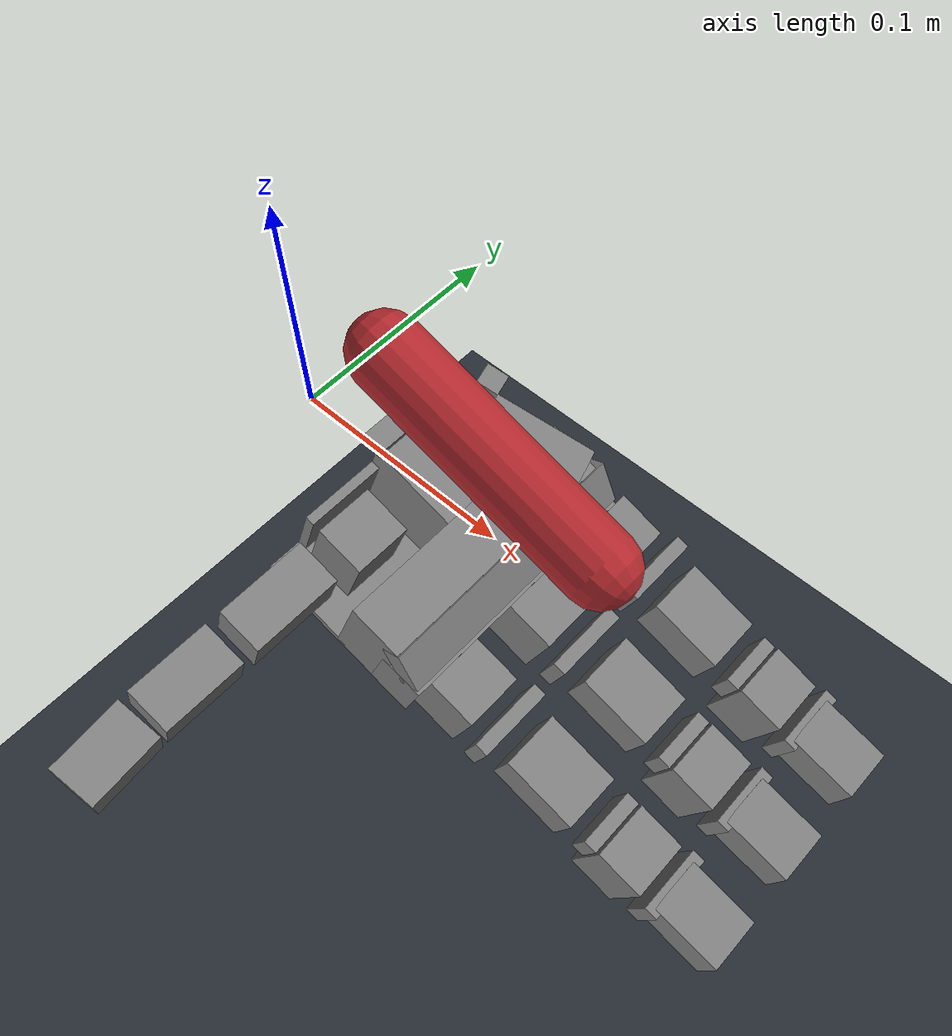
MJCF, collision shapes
<mujoco model="leap_ec_large_marker">
  <include file="leap_rh_mjx.xml"/>
  <asset><material name="ec_object_material" rgba="0.70 0.16 0.18 1"/></asset>
  <worldbody>
    <body name="cube" pos="0.1 0 0.05" quat="0.810967 -0.00262895 -0.585086 -0.000254303">
      <freejoint name="cube_freejoint"/>
      <geom name="large_marker_geom" type="capsule" fromto="0 0 -0.052 0 0 0.052" size="0.015"
        mass="0.115" friction="0.9 0.05 0.0002" material="ec_object_material"/>
    </body>
  </worldbody>
  <include file="leap_policy_reference_environment.xml"/>
  <keyframe>
    <key name="reference_grasp"
      qpos="
      0.107166316534 0.114441043793 0.955686900859 0.780980908733
      0.0936089620079 -0.177035017408 0.274451788441 0.980440660661
      1.20702052739 0.108302461426 1.35235027676 0.943014533488
      0.581880654615 0.452434361019 1.26135454793 -0.290390360195
      0.10117588733 0.000847614872757 0.000825212688257
      0.838608284287 0.00272628835086 -0.544639121394 -0.00984582774433"
      ctrl="
      -0.314 0.712430912768 1.05769039569 0.76714204317
      -0.314 -0.244774429593 -0.506 1.51616811678
      1.38922822215 -0.0116619367618 1.76141458675 1.07222869531
      0.542633232847 0.401469043642 1.30771925366 -0.402461828664"/>
  </keyframe>
</mujoco>

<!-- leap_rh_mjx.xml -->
<mujoco model="leap_rh">
  <!-- AutoAdapter modification: local mesh paths and deployed 0.002 s timestep. -->
  <compiler angle="radian" autolimits="true"/>

  <option timestep="0.002" integrator="Euler" iterations="5" ls_iterations="8">
    <flag eulerdamp="disable"/>
  </option>

  <custom>
    <numeric data="30" name="max_contact_points"/>
    <numeric data="12" name="max_geom_pairs"/>
  </custom>

  <asset>
    <material name="black" rgba="0.2 0.2 0.2 1"/>
    <material name="gray" rgba="0.5 0.5 0.5 1"/>
    <mesh name="leap_mount" file="assets/leap_mount.obj"/>

    <mesh name="palm" file="assets/palm_right.obj"/>
    <mesh name="base" file="assets/base.obj"/>
    <mesh name="proximal" file="assets/proximal.obj"/>
    <mesh name="medial" file="assets/medial.obj"/>
    <mesh name="distal" file="assets/distal.obj"/>
    <mesh name="tip" file="assets/tip.obj"/>
    <mesh name="thumb_base" file="assets/thumb_base.obj"/>
    <mesh name="thumb_proximal" file="assets/thumb_proximal.obj"/>
    <mesh name="thumb_distal" file="assets/thumb_distal.obj"/>
    <mesh name="thumb_tip" file="assets/thumb_tip.obj"/>
  </asset>

  <default>
    <default class="leap_rh">
      <geom group="3" friction="0.2" solref="0.02 1.5" solimp="0.9 0.99 0.001"/>
      <default class="visual">
        <geom group="2" type="mesh" contype="0" conaffinity="0" density="0" material="black"/>
      </default>
      <default class="tip">
        <geom size="0.01 0.012 0.016" pos="-0.0012969 -0.0335524 0.0145207" quat="0.703552 0.709596 -0.0292107 -0.0252203" type="box" friction="0.7 0.05 0.0002" rgba=".5 .5 .5 .3"/>
      </default>
      <default class="thumb_tip">
        <geom size="0.01 0.012 0.016" pos="-0.00127744 -0.0455619 -0.0144774" quat="0.708101 0.705072 -0.0294902 -0.024426" type="box" friction="0.7 0.05 0.0002" rgba=".5 .5 .5 .3"/>
      </default>

      <position kp="3.0" inheritrange="1"/>
      <!-- armature = rotor inertia * gear ratio^2 = 1.7 * 1e-8 * 288*288 = 0.00149376 -->
      <!-- max torque = 0.2196 = 600/1000*0.366 -->
      <!-- frictionloss = rough guess, small ish value -->
      <joint axis="0 0 -1" damping="0.2" armature="0.00149376" actuatorfrcrange="-0.2196 0.2196" frictionloss="0.02"/>

      <default class="mcp">
        <joint range="-0.314 2.23"/>
      </default>
      <default class="rot">
        <joint range="-1.047 1.047"/>
      </default>
      <default class="pip">
        <joint range="-0.506 1.885"/>
      </default>
      <default class="dip">
        <joint range="-0.366 2.042"/>
      </default>
      <default class="thumb_cmc">
        <joint range="-0.349 2.094"/>
      </default>
      <default class="thumb_axl">
        <joint range="-0.349 2.094"/>
      </default>
      <default class="thumb_mcp">
        <joint range="-0.47 2.443"/>
      </default>
      <default class="thumb_ipl">
        <joint range="-1.34 1.88"/>
      </default>

    </default>
  </default>

  <contact>
    <!-- filter the palm from all other finger bodies except the tips -->
    <exclude body1="palm" body2="if_bs"/>
    <exclude body1="palm" body2="mf_bs"/>
    <exclude body1="palm" body2="rf_bs"/>
    <exclude body1="palm" body2="th_mp"/>

    <exclude body1="palm" body2="if_px"/>
    <exclude body1="palm" body2="mf_px"/>
    <exclude body1="palm" body2="rf_px"/>
    <exclude body1="palm" body2="th_bs"/>

    <exclude body1="palm" body2="if_md"/>
    <exclude body1="palm" body2="mf_md"/>
    <exclude body1="palm" body2="rf_md"/>
    <exclude body1="palm" body2="th_px"/>

    <!-- filter the mount from all finger bodies except the tips -->
    <exclude body1="leap_mount" body2="if_bs"/>
    <exclude body1="leap_mount" body2="mf_bs"/>
    <exclude body1="leap_mount" body2="rf_bs"/>
    <exclude body1="leap_mount" body2="th_mp"/>

    <exclude body1="leap_mount" body2="if_px"/>
    <exclude body1="leap_mount" body2="mf_px"/>
    <exclude body1="leap_mount" body2="rf_px"/>
    <exclude body1="leap_mount" body2="th_bs"/>

    <exclude body1="leap_mount" body2="if_md"/>
    <exclude body1="leap_mount" body2="mf_md"/>
    <exclude body1="leap_mount" body2="rf_md"/>
    <exclude body1="leap_mount" body2="th_px"/>

    <!-- none of the base fingertip geoms can touch each other -->
    <exclude body1="if_bs" body2="mf_bs"/>
    <exclude body1="if_bs" body2="rf_bs"/>
    <exclude body1="mf_bs" body2="rf_bs"/>

    <exclude body1="th_mp" body2="if_bs"/>
    <exclude body1="th_mp" body2="mf_bs"/>
    <exclude body1="th_mp" body2="rf_bs"/>
  </contact>

  <worldbody>
    <light name="spotlight" mode="targetbodycom" target="palm" pos="3 0 4"/>
    <body name="leap_mount" pos="0 0 0" quat="1 0 0 0" childclass="leap_rh">
      <geom name="leap_mount_visual" pos="0 0 0" quat="1 0 0 0" class="visual" mesh="leap_mount"/>
      <geom name="leap_mount_collision_0" size="0.002 0.025 0.005" pos="0.0405 0.02 0.009"
        quat="0.57346234 0 0.81923192 0" type="box"/>
      <geom name="leap_mount_collision_1" size="0.005 0.005 0.005" pos="0.05 0.053 0.002"
        quat="0.4987168 0.64994038 -0.34910175 0.45495826" type="box"/>
      <site name="grasp_site" pos="0.11 0.0 0.03" group="4"/>
      <body name="palm" pos="0.124 -0.0305 -0.06045" quat="0 1 0 -0.175">
        <inertial pos="-0.049542 -0.042914 -0.010227" quat="0.565586 0.427629 -0.574956 0.408254" mass="0.237"
          diaginertia="0.000407345 0.000304759 0.000180736"/>
        <geom name="palm_visual" pos="-0.02 0.02575 -0.0347" quat="1 0 0 0" class="visual" mesh="palm"/>
        <geom name="palm_collision_1" size="0.011 0.013 0.017" pos="-0.009 0.008 -0.011" type="box"/>
        <geom name="palm_collision_2" size="0.011 0.013 0.017" pos="-0.009 -0.037 -0.011" type="box"/>
        <geom name="palm_collision_3" size="0.011 0.013 0.017" pos="-0.009 -0.082 -0.011" type="box"/>
        <geom name="palm_collision_4" size="0.029 0.01 0.023" pos="-0.066 -0.078 -0.0115" quat="0.989016 0 0 -0.147806" type="box"/>
        <geom name="palm_collision_5" size="0.01 0.06 0.015" pos="-0.03 -0.035 -0.003" type="box"/>
        <geom name="palm_collision_6" size="0.005 0.06 0.01" pos="-0.032 -0.035 -0.024" quat="0.923956 0 0.382499 0" type="box"/>
        <geom name="palm_collision_7" size="0.012 0.058 0.023" pos="-0.048 -0.033 -0.0115" type="box"/>
        <geom name="palm_collision_8" size="0.022 0.026 0.023" pos="-0.078 -0.053 -0.0115" type="box"/>
        <geom name="palm_collision_9" size="0.002 0.018 0.017" pos="-0.098 -0.009 -0.006" type="box"/>
        <geom name="palm_collision_10" size="0.022 0.028 0.002" pos="-0.078 -0.003 0.01" type="box"/>
        <body name="if_bs" pos="-0.007 0.023 -0.0187" quat="0.5 0.5 0.5 -0.5">
          <inertial pos="-0.022516 0.033882 0.016359" quat="0.388092 0.677951 -0.247713 0.573067" mass="0.044"
            diaginertia="1.74972e-05 1.61504e-05 7.21342e-06"/>
          <joint name="if_mcp" class="mcp"/>
          <geom name="if_bs_visual" pos="0.0084 0.0077 0.01465" quat="1 0 0 0" class="visual" mesh="base"/>
          <geom name="if_bs_collision_1" size="0.01 0.003 0.017" pos="0 0.018 0.0147" type="box"/>
          <body name="if_px" pos="-0.0122 0.0381 0.0145" quat="0.500003 -0.5 -0.499997 0.5">
            <inertial pos="0.0075 -0.0002 -0.011" quat="0 0.707107 0 0.707107" mass="0.032"
              diaginertia="4.8853e-06 4.3733e-06 3.0933e-06"/>
            <joint name="if_rot" class="rot"/>
            <geom name="if_px_visual" pos="0.0096 0.0002 0.0007" quat="0.500003 -0.5 -0.5 -0.499997" class="visual"
              mesh="proximal"/>
            <geom name="if_px_collision" size="0.017 0.013 0.011" pos="0.0075 -0.0002 -0.011" type="box"/>

            <body name="if_md" pos="0.015 0.0143 -0.013" quat="0.500003 0.5 -0.5 0.499997">
              <inertial pos="0.0054215 -0.029148 0.015" quat="0.687228 0.687228 0.166487 0.166487" mass="0.037"
                diaginertia="8.28004e-06 8.1598e-06 5.39516e-06"/>
              <joint name="if_pip" class="pip"/>
              <geom name="if_md_visual" pos="0.0211 -0.0084 0.0097" quat="2.67949e-08 -1 0 0" class="visual"
                mesh="medial"/>
              <geom name="if_md_collision_1" size="0.008 0.003 0.013" pos="0 -0.02 0.015" type="box"/>
              <geom name="if_md_collision_5" size="0.017 0.011 0.013" pos="0.0075 -0.035 0.015" type="box"/>
              <body name="if_ds" pos="0 -0.0361 0.0002">
                <inertial pos="-0.0008794 -0.027019 0.014594" quat="0.702905 0.710643 -0.0212937 -0.0214203"
                  mass="0.016" diaginertia="3.71863e-06 3.02396e-06 1.6518e-06"/>
                <joint name="if_dip" class="dip"/>
                <geom name="if_ds_visual" pos="0.0132 -0.0061 0.0144" quat="2.67949e-08 1 0 0" class="visual"
                  mesh="distal"/>
                <geom name="if_ds_collision_1" size="0.01 0.003 0.015" pos="0 -0.017 0.015" type="box"/>
                <geom name="if_tip" class="tip"/>
                <geom type="mesh" mesh="tip" class="visual" material="gray"/>
                <site name="if_tip" pos="0 -0.05 0.015" group="4"/>
              </body>
            </body>
          </body>
        </body>
        <body name="mf_bs" pos="-0.0071 -0.0224 -0.0187" quat="0.500003 0.5 0.5 -0.499997">
          <inertial pos="-0.022516 0.033882 0.016359" quat="0.388092 0.677951 -0.247713 0.573067" mass="0.044"
            diaginertia="1.74972e-05 1.61504e-05 7.21342e-06"/>
          <joint name="mf_mcp" class="mcp"/>
          <geom name="mf_bs_visual" pos="0.0084 0.0077 0.01465" quat="1 0 0 0" class="visual" mesh="base"/>
          <geom name="mf_bs_collision_1" size="0.01 0.003 0.017" pos="0 0.018 0.0147" type="box"/>
          <body name="mf_px" pos="-0.0122 0.0381 0.0145" quat="0.500003 -0.5 -0.499997 0.5">
            <inertial pos="0.0075 -0.0002 -0.011" quat="0 0.707107 0 0.707107" mass="0.032"
              diaginertia="4.8853e-06 4.3733e-06 3.0933e-06"/>
            <joint name="mf_rot" class="rot"/>
            <geom name="mf_px_visual" pos="0.0096 0.0003 0.0007" quat="0.500003 -0.5 -0.5 -0.499997" class="visual"
              mesh="proximal"/>
            <geom name="mf_px_collision" size="0.017 0.013 0.011" pos="0.0075 -0.0002 -0.011" type="box"/>
            <body name="mf_md" pos="0.015 0.0143 -0.013" quat="0.500003 0.5 -0.5 0.499997">
              <inertial pos="0.0054215 -0.029148 0.015" quat="0.687228 0.687228 0.166487 0.166487" mass="0.037"
                diaginertia="8.28004e-06 8.1598e-06 5.39516e-06"/>
              <joint name="mf_pip" class="pip"/>
              <geom name="mf_md_visual" pos="0.0211 -0.0084 0.0097" quat="1.32679e-06 -1 0 0" class="visual"
                mesh="medial"/>
              <geom name="mf_md_collision_1" size="0.008 0.003 0.013" pos="0 -0.02 0.015" type="box"/>
              <geom name="mf_md_collision_5" size="0.017 0.011 0.013" pos="0.0075 -0.035 0.015" type="box"/>
              <body name="mf_ds" pos="0 -0.0361 0.0002">
                <inertial pos="-0.0008794 -0.027019 0.014594" quat="0.702905 0.710643 -0.0212937 -0.0214203"
                  mass="0.016" diaginertia="3.71863e-06 3.02396e-06 1.6518e-06"/>
                <joint name="mf_dip" class="dip"/>
                <geom name="mf_ds_visual" pos="0.0132 -0.0061 0.0145" quat="1.32679e-06 1 0 0" class="visual"
                  mesh="distal"/>
                <geom name="mf_ds_collision_1" size="0.01 0.003 0.015" pos="0 -0.017 0.015" type="box"/>
                <geom name="mf_tip" class="tip"/>
                <geom type="mesh" mesh="tip" class="visual" material="gray"/>
                <site name="mf_tip" pos="0 -0.05 0.015" group="4"/>
              </body>
            </body>
          </body>
        </body>
        <body name="rf_bs" pos="-0.00709 -0.0678 -0.0187" quat="0.500003 0.5 0.5 -0.499997">
          <inertial pos="-0.022516 0.033882 0.016359" quat="0.388092 0.677951 -0.247713 0.573067" mass="0.044"
            diaginertia="1.74972e-05 1.61504e-05 7.21342e-06"/>
          <joint name="rf_mcp" class="mcp"/>
          <geom name="rf_bs_visual" pos="0.0084 0.0077 0.01465" quat="1 0 0 0" class="visual" mesh="base"/>
          <geom name="rf_bs_collision_1" size="0.01 0.003 0.017" pos="0 0.018 0.0147" type="box"/>
          <body name="rf_px" pos="-0.0122 0.0381 0.0145" quat="0.500003 -0.5 -0.499997 0.5">
            <inertial pos="0.0075 -0.0002 -0.011" quat="0 0.707107 0 0.707107" mass="0.032"
              diaginertia="4.8853e-06 4.3733e-06 3.0933e-06"/>
            <joint name="rf_rot" class="rot"/>
            <geom name="rf_px_visual" pos="0.0096 0.0003 0.0007" quat="0.500003 -0.5 -0.5 -0.499997" class="visual"
              mesh="proximal"/>
            <geom name="rf_px_collision" size="0.017 0.013 0.011" pos="0.0075 -0.0002 -0.011" type="box"/>
            <body name="rf_md" pos="0.015 0.0143 -0.013" quat="0.500003 0.5 -0.5 0.499997">
              <inertial pos="0.0054215 -0.029148 0.015" quat="0.687228 0.687228 0.166487 0.166487" mass="0.037"
                diaginertia="8.28004e-06 8.1598e-06 5.39516e-06"/>
              <joint name="rf_pip" class="pip"/>
              <geom name="rf_md_visual" pos="0.0211 -0.0084 0.0097" quat="0 -1 0 0" class="visual" mesh="medial"/>
              <geom name="rf_md_collision_1" size="0.008 0.003 0.013" pos="0 -0.02 0.015" type="box"/>
              <geom name="rf_md_collision_5" size="0.017 0.011 0.013" pos="0.0075 -0.035 0.015" type="box"/>
              <body name="rf_ds" pos="0 -0.03609 0.0002">
                <inertial pos="-0.0008794 -0.027019 0.014594" quat="0.702905 0.710643 -0.0212937 -0.0214203"
                  mass="0.016" diaginertia="3.71863e-06 3.02396e-06 1.6518e-06"/>
                <joint name="rf_dip" class="dip"/>
                <geom name="rf_ds_visual" pos="0.0132 -0.0061 0.0145" quat="0 1 0 0" class="visual" mesh="distal"/>
                <geom name="rf_ds_collision_1" size="0.01 0.003 0.015" pos="0 -0.017 0.015" type="box"/>
                <geom name="rf_tip" class="tip"/>
                <geom type="mesh" mesh="tip" class="visual" material="gray"/>
                <site name="rf_tip" pos="0 -0.05 0.015" group="4"/>
              </body>
            </body>
          </body>
        </body>
        <body name="th_mp" pos="-0.0693 -0.0012 -0.0216" quat="0.707109 0 0.707105 0">
          <inertial pos="0.0075 -0.0002 -0.011" quat="0 0.707107 0 0.707107" mass="0.032"
            diaginertia="4.8853e-06 4.3733e-06 3.0933e-06"/>
          <joint name="th_cmc" class="thumb_cmc"/>
          <geom name="th_mp_visual" pos="-0.0053 0.0003 0.00078" quat="0.500003 -0.5 -0.5 -0.499997" class="visual"
            mesh="proximal"/>
          <geom name="th_mp_collision" size="0.017 0.013 0.011" pos="-0.0075 -0.0002 -0.011" type="box"/>
          <body name="th_bs" pos="0 0.0143 -0.013" quat="0.500003 0.5 -0.5 0.499997">
            <inertial pos="0 0 -0.0070806" quat="0.707107 0.707107 0 0" mass="0.003"
              diaginertia="6.1932e-07 5.351e-07 2.1516e-07"/>
            <joint name="th_axl" class="thumb_axl"/>
            <geom name="th_bs_collision_1" pos="0.01196 0 -0.0158" quat="0.707109 0.707105 0 0" class="visual" mesh="thumb_base"/>
            <body name="th_px" pos="0 0.0145 -0.017" quat="0.707109 -0.707105 0 0">
              <inertial pos="-0.0020593 0.015912 -0.013733" quat="0.698518 0.697382 -0.104933 0.121324" mass="0.038"
                diaginertia="9.87104e-06 9.32653e-06 4.36203e-06"/>
              <joint name="th_mcp" class="thumb_mcp"/>
              <geom name="th_px_visual" pos="0.0439 0.0579 -0.0086" quat="1 0 0 0" class="visual" mesh="thumb_proximal"/>
              <geom name="th_px_collision_1" size="0.01 0.02 0.012" pos="0 0.0105 -0.014" type="box"/>
              <body name="th_ds" pos="0 0.0466 0.0002" quat="1.32679e-06 0 0 1">
                <inertial pos="0.00096191 -0.024203 -0.014419" quat="0.35287 0.311272 -0.632839 0.614904" mass="0.049"
                  diaginertia="2.08591e-05 2.0402e-05 4.71335e-06"/>
                <joint name="th_ipl" class="thumb_ipl"/>
                <geom name="th_ds_visual" pos="0.0625 0.0784 0.0489" quat="1 0 0 0" class="visual" mesh="thumb_distal"/>
                <geom name="th_ds_collision_1" size="0.01 0.018 0.012" pos="0 -0.0085 -0.015" type="box"/>
                <geom name="th_tip" class="thumb_tip"/>
                <site name="th_tip" pos="0 -0.06 -0.015" group="4"/>
                <geom type="mesh" mesh="thumb_tip" class="visual" material="gray"/>
              </body>
            </body>
          </body>
        </body>
      </body>
    </body>
  </worldbody>

  <actuator>
    <position name="if_mcp_act" joint="if_mcp" class="mcp"/>
    <position name="if_rot_act" joint="if_rot" class="rot"/>
    <position name="if_pip_act" joint="if_pip" class="pip"/>
    <position name="if_dip_act" joint="if_dip" class="dip"/>
    <position name="mf_mcp_act" joint="mf_mcp" class="mcp"/>
    <position name="mf_rot_act" joint="mf_rot" class="rot"/>
    <position name="mf_pip_act" joint="mf_pip" class="pip"/>
    <position name="mf_dip_act" joint="mf_dip" class="dip"/>
    <position name="rf_mcp_act" joint="rf_mcp" class="mcp"/>
    <position name="rf_rot_act" joint="rf_rot" class="rot"/>
    <position name="rf_pip_act" joint="rf_pip" class="pip"/>
    <position name="rf_dip_act" joint="rf_dip" class="dip"/>
    <position name="th_cmc_act" joint="th_cmc" class="thumb_cmc"/>
    <position name="th_axl_act" joint="th_axl" class="thumb_axl"/>
    <position name="th_mcp_act" joint="th_mcp" class="thumb_mcp"/>
    <position name="th_ipl_act" joint="th_ipl" class="thumb_ipl"/>
  </actuator>
</mujoco>

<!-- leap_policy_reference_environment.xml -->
<mujoco>
  <statistic center="0.12 0 0.03" extent="0.32" meansize="0.01"/>

  <visual>
    <headlight diffuse="0.8 0.8 0.8" ambient="0.25 0.25 0.25" specular="0.3 0.3 0.3"/>
    <global offwidth="800" offheight="600"/>
  </visual>

  <asset>
    <material name="ec_floor" rgba="0.16 0.18 0.21 1"/>
  </asset>

  <worldbody>
    <light name="ec_key" pos="-0.2 -0.3 0.6" dir="0.3 0.3 -1" directional="true"/>
    <camera name="evidence" pos="-0.22 0.39 0.27" xyaxes="-0.87 -0.49 0 0.22 -0.39 0.89"/>
    <geom name="ec_floor" pos="0 0 -0.25" size="0 0 0.01" type="plane" material="ec_floor"
      contype="2" conaffinity="2"/>
    <body name="goal" pos="0.25 0.16 0" quat="1 0 0 0"/>
    <body name="goal_z90" pos="0.25 0.16 0" quat="0.7071067812 0 0 0.7071067812"/>
    <body name="goal_z180" pos="0.25 0.16 0" quat="0 0 0 1"/>
    <body name="goal_z270" pos="0.25 0.16 0" quat="0.7071067812 0 0 -0.7071067812"/>
  </worldbody>

  <sensor>
    <framepos name="palm_position" objtype="site" objname="grasp_site"/>
    <framepos name="cube_position" objtype="body" objname="cube"/>
    <framequat name="cube_orientation" objtype="body" objname="cube"/>
    <framequat name="cube_goal_orientation" objtype="body" objname="goal"/>
    <framequat name="cube_goal_z90" objtype="body" objname="goal_z90"/>
    <framequat name="cube_goal_z180" objtype="body" objname="goal_z180"/>
    <framequat name="cube_goal_z270" objtype="body" objname="goal_z270"/>
  </sensor>

  <keyframe>
    <key name="home"
      qpos="
      0.8 0 0.8 0.8
      0.8 0 0.8 0.8
      0.8 0 0.8 0.8
      0.8 0.8 0.8 0
      0.1 0 0.05 0.810967 -0.00262895 -0.585086 -0.000254303"
      ctrl="
      0.8 0 0.8 0.8
      0.8 0 0.8 0.8
      0.8 0 0.8 0.8
      0.8 0.8 0.8 0"/>
  </keyframe>
</mujoco>
